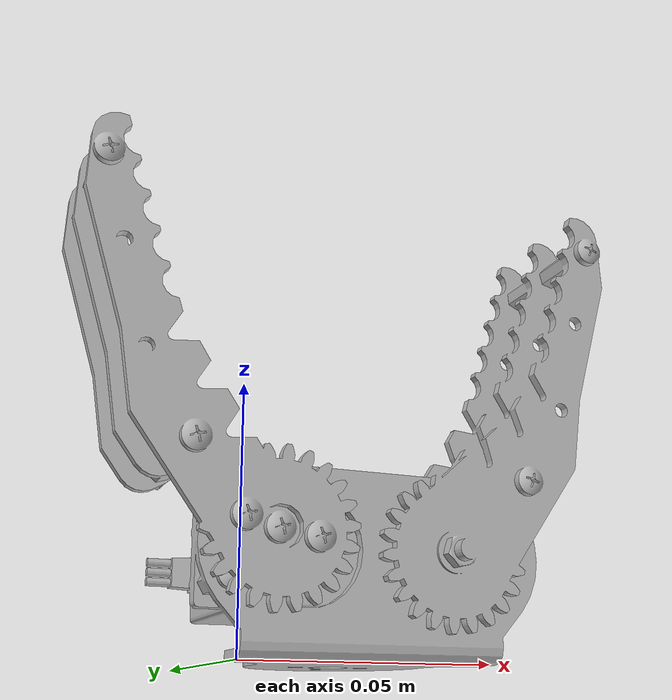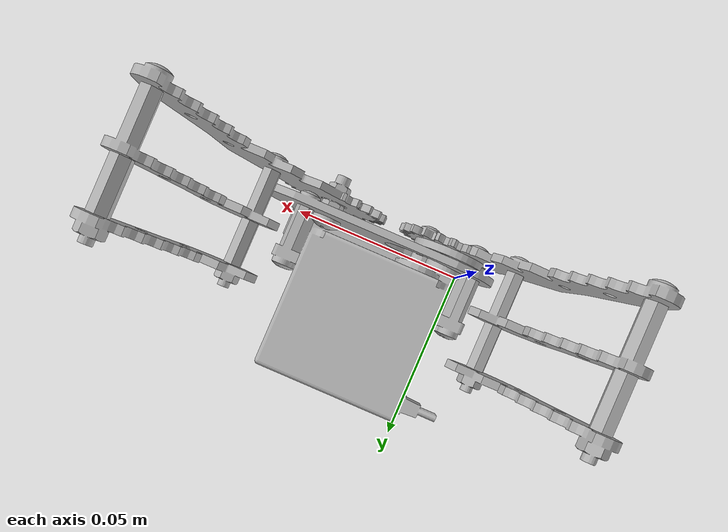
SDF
<sdf version='1.6'>
  <model name='gripper3'>
    <link name='base_link'>
      <pose frame=''>0 0 0 0 -0 0</pose>
      <inertial>
        <pose frame=''>0.022563 0.018368 -0.0176 0 -0 0</pose>
        <mass>0.085138</mass>
        <inertia>
          <ixx>1.5815E-05</ixx>
          <ixy>5.4955E-07</ixy>
          <ixz>-7.279E-07</ixz>
          <iyy>2.219E-05</iyy>
          <iyz>2.9639E-06</iyz>
          <izz>2.4841E-05</izz>
        </inertia>
      </inertial>
      <collision name='base_link_collision'>
        <pose frame=''>0 0 0 0 -0 0</pose>
        <geometry>
          <mesh>
            <scale>1 1 1</scale>
            <uri>model://gripper3/meshes/base_link.STL</uri>
          </mesh>
        </geometry>
      </collision>
      <visual name='base_link_visual'>
        <pose frame=''>0 0 0 0 -0 0</pose>
        <geometry>
          <mesh>
            <scale>1 1 1</scale>
            <uri>model://gripper3/meshes/base_link.STL</uri>
          </mesh>
        </geometry>
      </visual>
    </link>
    <link name='Empty_Link1'>
      <pose frame=''>0.04 0 0.02 1.5708 0.90665 -0</pose>
      <inertial>
        <pose frame=''>-0.021122 0.028354 -0.005583 0 -0 0</pose>
        <mass>0.1</mass>
        <inertia>
          <ixx>1.1931E-05</ixx>
          <ixy>8.7376E-06</ixy>
          <ixz>-1.3248E-16</ixz>
          <iyy>8.789E-06</iyy>
          <iyz>-2.1751E-17</iyz>
          <izz>2.0324E-05</izz>
        </inertia>
      </inertial>
      <collision name='Empty_Link1_collision'>
        <pose frame=''>0 0 0 0 -0 0</pose>
        <geometry>
          <mesh>
            <scale>1 1 1</scale>
            <uri>model://gripper3/meshes/Empty_Link1.STL</uri>
          </mesh>
        </geometry>
          <surface>
            <friction>
              <ode>
                <mu>1</mu>
                <mu2>1</mu2>
              </ode>
            </friction>
          </surface>
      </collision>
      <visual name='Empty_Link1_visual'>
        <pose frame=''>0 0 0 0 -0 0</pose>
        <geometry>
          <mesh>
            <scale>1 1 1</scale>
            <uri>model://gripper3/meshes/Empty_Link1.STL</uri>
          </mesh>
        </geometry>
      </visual>
    </link>
    <joint name='joint1' type='revolute'>
      <child>Empty_Link1</child>
      <parent>base_link</parent>
      <axis>
        <xyz>0 0 1</xyz>
        <limit>
          <lower>-0.5</lower>
          <upper>2</upper>
          <effort>0.5</effort>
          <velocity>0.1</velocity>
        </limit>
        <dynamics>
          <damping>0.0001</damping>
          <friction>0</friction>
          <spring_reference>0</spring_reference>
          <spring_stiffness>0</spring_stiffness>
        </dynamics>
        <use_parent_model_frame>0</use_parent_model_frame>
      </axis>
    </joint>
    <link name='Empty_Link2'>
      <pose frame=''>0.012 0 0.0195 -1.5708 0.96069 3.14159</pose>
      <inertial>
        <pose frame=''>-0.019265 -0.025888 -0.004777 0 -0 0</pose>
        <mass>0.1</mass>
        <inertia>
          <ixx>1.6519e-06</ixx>
          <ixy>-1.216e-06</ixy>
          <ixz>-7.2546e-17</ixz>
          <iyy>1.5595e-06</iyy>
          <iyz>-3.2073e-16</iyz>
          <izz>2.886e-06</izz>
        </inertia>
      </inertial>
      <collision name='Empty_Link2_collision'>
        <pose frame=''>0 0 0 0 -0 0</pose>
        <geometry>
          <mesh>
            <scale>1 1 1</scale>
            <uri>model://gripper3/meshes/Empty_Link2.STL</uri>
          </mesh>
        </geometry>
          <surface>
            <friction>
              <ode>
                <mu>1</mu>
                <mu2>1</mu2>
              </ode>
            </friction>
          </surface>
      </collision>
      <visual name='Empty_Link2_visual'>
        <pose frame=''>0 0 0 0 -0 0</pose>
        <geometry>
          <mesh>
            <scale>1 1 1</scale>
            <uri>model://gripper3/meshes/Empty_Link2.STL</uri>
          </mesh>
        </geometry>
      </visual>
    </link>
    <joint name='joint2' type='revolute'>
      <child>Empty_Link2</child>
      <parent>base_link</parent>
      <axis>
        <xyz>0 0 -1</xyz>
        <limit>
          <lower>-0.5</lower>
          <upper>2</upper>
          <effort>0.5</effort>
          <velocity>0.1</velocity>
        </limit>
        <dynamics>
          <damping>0.0001</damping>
          <friction>0</friction>
          <spring_reference>0</spring_reference>
          <spring_stiffness>0</spring_stiffness>
        </dynamics>
        <use_parent_model_frame>0</use_parent_model_frame>
      </axis>
    </joint>
  <plugin name="gripper_control3_1" filename="libgripper_plugin3_1.so"/>
  <plugin name="gripper_control3_2" filename="libgripper_plugin3_2.so"/>
  </model>
</sdf>
